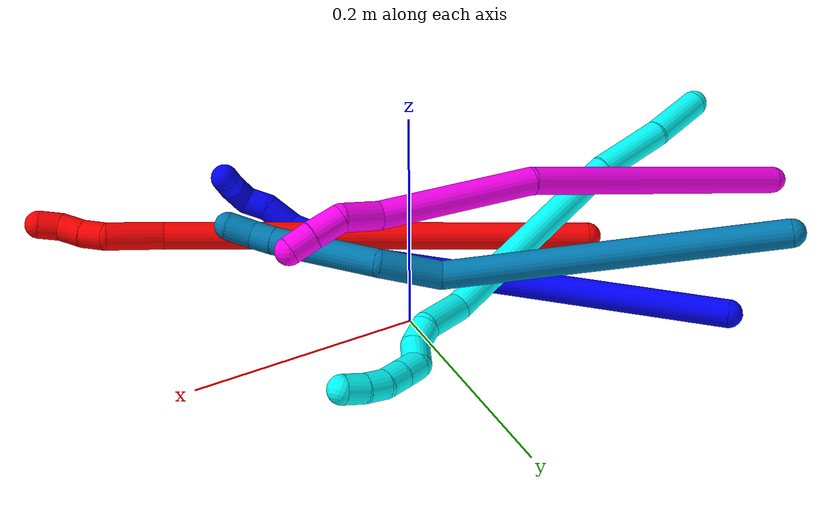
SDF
<sdf version="1.7">
 <world name="default">
  <model name="1">
   <static>0</static>
   <link name="1">
    <collision name="collision-cylinder-e_1_1_4">
     <pose>0.120253 -0.10048 0.048038 1.12484 0.823722 0.53739</pose>
     <geometry><cylinder><radius>0.0125</radius><length>0.327809</length></cylinder></geometry>
     <surface>
      <friction><ode><mu>1.16</mu><mu2>1.16</mu2><slip1>0</slip1><slip2>0</slip2></ode></friction>
      <contact><ode><kp>1e+06</kp><kd>1</kd><max_vel>0</max_vel><min_depth>0.001</min_depth></ode></contact>
     </surface>
    </collision>
    <visual name="visual-cylinder-e_1_1_4">
     <pose>0.120253 -0.10048 0.048038 1.12484 0.823722 0.53739</pose>
     <geometry><cylinder><radius>0.0125</radius><length>0.327809</length></cylinder></geometry>
     <material><ambient>0 0 1 1</ambient></material>
    </visual>
    <collision name="collision-cylinder-e_2_4_5">
     <pose>0.267136 -0.215096 0.098072 1.43043 1.07867 0.958882</pose>
     <geometry><cylinder><radius>0.0125</radius><length>0.06043</length></cylinder></geometry>
     <surface>
      <friction><ode><mu>1.16</mu><mu2>1.16</mu2><slip1>0</slip1><slip2>0</slip2></ode></friction>
      <contact><ode><kp>1e+06</kp><kd>1</kd><max_vel>0</max_vel><min_depth>0.001</min_depth></ode></contact>
     </surface>
    </collision>
    <visual name="visual-cylinder-e_2_4_5">
     <pose>0.267136 -0.215096 0.098072 1.43043 1.07867 0.958882</pose>
     <geometry><cylinder><radius>0.0125</radius><length>0.06043</length></cylinder></geometry>
     <material><ambient>0 0 1 1</ambient></material>
    </visual>
    <collision name="collision-cylinder-e_3_5_6">
     <pose>0.302849 -0.23362 0.101478 1.26021 1.1013 0.842002</pose>
     <geometry><cylinder><radius>0.0125</radius><length>0.020371</length></cylinder></geometry>
     <surface>
      <friction><ode><mu>1.16</mu><mu2>1.16</mu2><slip1>0</slip1><slip2>0</slip2></ode></friction>
      <contact><ode><kp>1e+06</kp><kd>1</kd><max_vel>0</max_vel><min_depth>0.001</min_depth></ode></contact>
     </surface>
    </collision>
    <visual name="visual-cylinder-e_3_5_6">
     <pose>0.302849 -0.23362 0.101478 1.26021 1.1013 0.842002</pose>
     <geometry><cylinder><radius>0.0125</radius><length>0.020371</length></cylinder></geometry>
     <material><ambient>0 0 1 1</ambient></material>
    </visual>
    <collision name="collision-cylinder-e_4_6_7">
     <pose>0.322295 -0.248198 0.098809 1.95145 0.756719 1.06196</pose>
     <geometry><cylinder><radius>0.0125</radius><length>0.030191</length></cylinder></geometry>
     <surface>
      <friction><ode><mu>1.16</mu><mu2>1.16</mu2><slip1>0</slip1><slip2>0</slip2></ode></friction>
      <contact><ode><kp>1e+06</kp><kd>1</kd><max_vel>0</max_vel><min_depth>0.001</min_depth></ode></contact>
     </surface>
    </collision>
    <visual name="visual-cylinder-e_4_6_7">
     <pose>0.322295 -0.248198 0.098809 1.95145 0.756719 1.06196</pose>
     <geometry><cylinder><radius>0.0125</radius><length>0.030191</length></cylinder></geometry>
     <material><ambient>0 0 1 1</ambient></material>
    </visual>
    <collision name="collision-cylinder-e_5_7_8">
     <pose>0.340111 -0.265531 0.095661 1.44131 0.802405 0.713251</pose>
     <geometry><cylinder><radius>0.0125</radius><length>0.020728</length></cylinder></geometry>
     <surface>
      <friction><ode><mu>1.16</mu><mu2>1.16</mu2><slip1>0</slip1><slip2>0</slip2></ode></friction>
      <contact><ode><kp>1e+06</kp><kd>1</kd><max_vel>0</max_vel><min_depth>0.001</min_depth></ode></contact>
     </surface>
    </collision>
    <visual name="visual-cylinder-e_5_7_8">
     <pose>0.340111 -0.265531 0.095661 1.44131 0.802405 0.713251</pose>
     <geometry><cylinder><radius>0.0125</radius><length>0.020728</length></cylinder></geometry>
     <material><ambient>0 0 1 1</ambient></material>
    </visual>
    <collision name="collision-cylinder-e_6_8_9">
     <pose>0.350241 -0.281111 0.091806 2.08663 0.269298 0.456973</pose>
     <geometry><cylinder><radius>0.0125</radius><length>0.020126</length></cylinder></geometry>
     <surface>
      <friction><ode><mu>1.16</mu><mu2>1.16</mu2><slip1>0</slip1><slip2>0</slip2></ode></friction>
      <contact><ode><kp>1e+06</kp><kd>1</kd><max_vel>0</max_vel><min_depth>0.001</min_depth></ode></contact>
     </surface>
    </collision>
    <visual name="visual-cylinder-e_6_8_9">
     <pose>0.350241 -0.281111 0.091806 2.08663 0.269298 0.456973</pose>
     <geometry><cylinder><radius>0.0125</radius><length>0.020126</length></cylinder></geometry>
     <material><ambient>0 0 1 1</ambient></material>
    </visual>
    <collision name="collision-cylinder-e_7_9_2">
     <pose>0.349602 -0.297366 0.081419 2.19273 -0.332081 -0.630855</pose>
     <geometry><cylinder><radius>0.0125</radius><length>0.020345</length></cylinder></geometry>
     <surface>
      <friction><ode><mu>1.16</mu><mu2>1.16</mu2><slip1>0</slip1><slip2>0</slip2></ode></friction>
      <contact><ode><kp>1e+06</kp><kd>1</kd><max_vel>0</max_vel><min_depth>0.001</min_depth></ode></contact>
     </surface>
    </collision>
    <visual name="visual-cylinder-e_7_9_2">
     <pose>0.349602 -0.297366 0.081419 2.19273 -0.332081 -0.630855</pose>
     <geometry><cylinder><radius>0.0125</radius><length>0.020345</length></cylinder></geometry>
     <material><ambient>0 0 1 1</ambient></material>
    </visual>
    <collision name="collision-sphere-2">
     <pose>0.346285 -0.305182 0.075816 0 -0 0</pose>
     <geometry><sphere><radius>0.0125</radius></sphere></geometry>
     <surface>
      <friction><ode><mu>1.16</mu><mu2>1.16</mu2><slip1>0</slip1><slip2>0</slip2></ode></friction>
      <contact><ode><kp>1e+06</kp><kd>1</kd><max_vel>0</max_vel><min_depth>0.001</min_depth></ode></contact>
     </surface>
    </collision>
    <visual name="visual-sphere-2">
     <pose>0.346285 -0.305182 0.075816 0 -0 0</pose>
     <geometry><sphere><radius>0.0125</radius></sphere></geometry>
     <material><ambient>0 0 1 1</ambient></material>
    </visual>
    <collision name="collision-sphere-9">
     <pose>0.352918 -0.28955 0.087021 0 -0 0</pose>
     <geometry><sphere><radius>0.0125</radius></sphere></geometry>
     <surface>
      <friction><ode><mu>1.16</mu><mu2>1.16</mu2><slip1>0</slip1><slip2>0</slip2></ode></friction>
      <contact><ode><kp>1e+06</kp><kd>1</kd><max_vel>0</max_vel><min_depth>0.001</min_depth></ode></contact>
     </surface>
    </collision>
    <visual name="visual-sphere-9">
     <pose>0.352918 -0.28955 0.087021 0 -0 0</pose>
     <geometry><sphere><radius>0.0125</radius></sphere></geometry>
     <material><ambient>0 0 1 1</ambient></material>
    </visual>
    <collision name="collision-sphere-4">
     <pose>0.240507 -0.20096 0.096075 0 -0 0</pose>
     <geometry><sphere><radius>0.0125</radius></sphere></geometry>
     <surface>
      <friction><ode><mu>1.16</mu><mu2>1.16</mu2><slip1>0</slip1><slip2>0</slip2></ode></friction>
      <contact><ode><kp>1e+06</kp><kd>1</kd><max_vel>0</max_vel><min_depth>0.001</min_depth></ode></contact>
     </surface>
    </collision>
    <visual name="visual-sphere-4">
     <pose>0.240507 -0.20096 0.096075 0 -0 0</pose>
     <geometry><sphere><radius>0.0125</radius></sphere></geometry>
     <material><ambient>0 0 1 1</ambient></material>
    </visual>
    <collision name="collision-sphere-1">
     <geometry><sphere><radius>0.0125</radius></sphere></geometry>
     <surface>
      <friction><ode><mu>1.16</mu><mu2>1.16</mu2><slip1>0</slip1><slip2>0</slip2></ode></friction>
      <contact><ode><kp>1e+06</kp><kd>1</kd><max_vel>0</max_vel><min_depth>0.001</min_depth></ode></contact>
     </surface>
    </collision>
    <visual name="visual-sphere-1">
     <geometry><sphere><radius>0.0125</radius></sphere></geometry>
     <material><ambient>0 0 1 1</ambient></material>
    </visual>
    <collision name="collision-sphere-8">
     <pose>0.347563 -0.272673 0.096591 0 -0 0</pose>
     <geometry><sphere><radius>0.0125</radius></sphere></geometry>
     <surface>
      <friction><ode><mu>1.16</mu><mu2>1.16</mu2><slip1>0</slip1><slip2>0</slip2></ode></friction>
      <contact><ode><kp>1e+06</kp><kd>1</kd><max_vel>0</max_vel><min_depth>0.001</min_depth></ode></contact>
     </surface>
    </collision>
    <visual name="visual-sphere-8">
     <pose>0.347563 -0.272673 0.096591 0 -0 0</pose>
     <geometry><sphere><radius>0.0125</radius></sphere></geometry>
     <material><ambient>0 0 1 1</ambient></material>
    </visual>
    <collision name="collision-sphere-5">
     <pose>0.293765 -0.229232 0.10007 0 -0 0</pose>
     <geometry><sphere><radius>0.0125</radius></sphere></geometry>
     <surface>
      <friction><ode><mu>1.16</mu><mu2>1.16</mu2><slip1>0</slip1><slip2>0</slip2></ode></friction>
      <contact><ode><kp>1e+06</kp><kd>1</kd><max_vel>0</max_vel><min_depth>0.001</min_depth></ode></contact>
     </surface>
    </collision>
    <visual name="visual-sphere-5">
     <pose>0.293765 -0.229232 0.10007 0 -0 0</pose>
     <geometry><sphere><radius>0.0125</radius></sphere></geometry>
     <material><ambient>0 0 1 1</ambient></material>
    </visual>
    <collision name="collision-sphere-6">
     <pose>0.311932 -0.238008 0.102887 0 -0 0</pose>
     <geometry><sphere><radius>0.0125</radius></sphere></geometry>
     <surface>
      <friction><ode><mu>1.16</mu><mu2>1.16</mu2><slip1>0</slip1><slip2>0</slip2></ode></friction>
      <contact><ode><kp>1e+06</kp><kd>1</kd><max_vel>0</max_vel><min_depth>0.001</min_depth></ode></contact>
     </surface>
    </collision>
    <visual name="visual-sphere-6">
     <pose>0.311932 -0.238008 0.102887 0 -0 0</pose>
     <geometry><sphere><radius>0.0125</radius></sphere></geometry>
     <material><ambient>0 0 1 1</ambient></material>
    </visual>
    <collision name="collision-sphere-7">
     <pose>0.332659 -0.258388 0.094731 0 -0 0</pose>
     <geometry><sphere><radius>0.0125</radius></sphere></geometry>
     <surface>
      <friction><ode><mu>1.16</mu><mu2>1.16</mu2><slip1>0</slip1><slip2>0</slip2></ode></friction>
      <contact><ode><kp>1e+06</kp><kd>1</kd><max_vel>0</max_vel><min_depth>0.001</min_depth></ode></contact>
     </surface>
    </collision>
    <visual name="visual-sphere-7">
     <pose>0.332659 -0.258388 0.094731 0 -0 0</pose>
     <geometry><sphere><radius>0.0125</radius></sphere></geometry>
     <material><ambient>0 0 1 1</ambient></material>
    </visual>
    <inertial>
     <pose>0.185349 -0.150801 0.064422 0 -0 0</pose>
     <mass>0.5</mass>
     <inertia>
      <ixx>0.002795</ixx>
      <ixy>0</ixy>
      <ixz>0</ixz>
      <iyy>0.003123</iyy>
      <iyz>0</iyz>
      <izz>-0.000357</izz>
     </inertia>
    </inertial>
   </link>
   <pose>-0.241599 0.135496 0.011491 -2.71882 -0.021404 -1.49361</pose>
  </model>
  <model name="2">
   <static>0</static>
   <link name="2">
    <collision name="collision-cylinder-e_1_1_4">
     <pose>0.089786 -0.119314 0.121055 0.778157 0.485986 0.202565</pose>
     <geometry><cylinder><radius>0.0125</radius><length>0.384456</length></cylinder></geometry>
     <surface>
      <friction><ode><mu>1.16</mu><mu2>1.16</mu2><slip1>0</slip1><slip2>0</slip2></ode></friction>
      <contact><ode><kp>1e+06</kp><kd>1</kd><max_vel>0</max_vel><min_depth>0.001</min_depth></ode></contact>
     </surface>
    </collision>
    <visual name="visual-cylinder-e_1_1_4">
     <pose>0.089786 -0.119314 0.121055 0.778157 0.485986 0.202565</pose>
     <geometry><cylinder><radius>0.0125</radius><length>0.384456</length></cylinder></geometry>
     <material><ambient>1 0 0 1</ambient></material>
    </visual>
    <collision name="collision-cylinder-e_2_4_5">
     <pose>0.19191 -0.257781 0.254403 1.00017 0.496768 0.275409</pose>
     <geometry><cylinder><radius>0.0125</radius><length>0.051776</length></cylinder></geometry>
     <surface>
      <friction><ode><mu>1.16</mu><mu2>1.16</mu2><slip1>0</slip1><slip2>0</slip2></ode></friction>
      <contact><ode><kp>1e+06</kp><kd>1</kd><max_vel>0</max_vel><min_depth>0.001</min_depth></ode></contact>
     </surface>
    </collision>
    <visual name="visual-cylinder-e_2_4_5">
     <pose>0.19191 -0.257781 0.254403 1.00017 0.496768 0.275409</pose>
     <geometry><cylinder><radius>0.0125</radius><length>0.051776</length></cylinder></geometry>
     <material><ambient>1 0 0 1</ambient></material>
    </visual>
    <collision name="collision-cylinder-e_3_5_6">
     <pose>0.209532 -0.280881 0.275158 0.436424 0.515035 0.116666</pose>
     <geometry><cylinder><radius>0.0125</radius><length>0.021458</length></cylinder></geometry>
     <surface>
      <friction><ode><mu>1.16</mu><mu2>1.16</mu2><slip1>0</slip1><slip2>0</slip2></ode></friction>
      <contact><ode><kp>1e+06</kp><kd>1</kd><max_vel>0</max_vel><min_depth>0.001</min_depth></ode></contact>
     </surface>
    </collision>
    <visual name="visual-cylinder-e_3_5_6">
     <pose>0.209532 -0.280881 0.275158 0.436424 0.515035 0.116666</pose>
     <geometry><cylinder><radius>0.0125</radius><length>0.021458</length></cylinder></geometry>
     <material><ambient>1 0 0 1</ambient></material>
    </visual>
    <collision name="collision-cylinder-e_4_6_7">
     <pose>0.221724 -0.287685 0.29182 0.335328 0.671884 0.118061</pose>
     <geometry><cylinder><radius>0.0125</radius><length>0.022191</length></cylinder></geometry>
     <surface>
      <friction><ode><mu>1.16</mu><mu2>1.16</mu2><slip1>0</slip1><slip2>0</slip2></ode></friction>
      <contact><ode><kp>1e+06</kp><kd>1</kd><max_vel>0</max_vel><min_depth>0.001</min_depth></ode></contact>
     </surface>
    </collision>
    <visual name="visual-cylinder-e_4_6_7">
     <pose>0.221724 -0.287685 0.29182 0.335328 0.671884 0.118061</pose>
     <geometry><cylinder><radius>0.0125</radius><length>0.022191</length></cylinder></geometry>
     <material><ambient>1 0 0 1</ambient></material>
    </visual>
    <collision name="collision-cylinder-e_5_7_2">
     <pose>0.234267 -0.296687 0.305648 0.829284 0.59486 0.268219</pose>
     <geometry><cylinder><radius>0.0125</radius><length>0.020119</length></cylinder></geometry>
     <surface>
      <friction><ode><mu>1.16</mu><mu2>1.16</mu2><slip1>0</slip1><slip2>0</slip2></ode></friction>
      <contact><ode><kp>1e+06</kp><kd>1</kd><max_vel>0</max_vel><min_depth>0.001</min_depth></ode></contact>
     </surface>
    </collision>
    <visual name="visual-cylinder-e_5_7_2">
     <pose>0.234267 -0.296687 0.305648 0.829284 0.59486 0.268219</pose>
     <geometry><cylinder><radius>0.0125</radius><length>0.020119</length></cylinder></geometry>
     <material><ambient>1 0 0 1</ambient></material>
    </visual>
    <collision name="collision-sphere-2">
     <pose>0.239905 -0.302831 0.311275 0 -0 0</pose>
     <geometry><sphere><radius>0.0125</radius></sphere></geometry>
     <surface>
      <friction><ode><mu>1.16</mu><mu2>1.16</mu2><slip1>0</slip1><slip2>0</slip2></ode></friction>
      <contact><ode><kp>1e+06</kp><kd>1</kd><max_vel>0</max_vel><min_depth>0.001</min_depth></ode></contact>
     </surface>
    </collision>
    <visual name="visual-sphere-2">
     <pose>0.239905 -0.302831 0.311275 0 -0 0</pose>
     <geometry><sphere><radius>0.0125</radius></sphere></geometry>
     <material><ambient>1 0 0 1</ambient></material>
    </visual>
    <collision name="collision-sphere-7">
     <pose>0.22863 -0.290543 0.30002 0 -0 0</pose>
     <geometry><sphere><radius>0.0125</radius></sphere></geometry>
     <surface>
      <friction><ode><mu>1.16</mu><mu2>1.16</mu2><slip1>0</slip1><slip2>0</slip2></ode></friction>
      <contact><ode><kp>1e+06</kp><kd>1</kd><max_vel>0</max_vel><min_depth>0.001</min_depth></ode></contact>
     </surface>
    </collision>
    <visual name="visual-sphere-7">
     <pose>0.22863 -0.290543 0.30002 0 -0 0</pose>
     <geometry><sphere><radius>0.0125</radius></sphere></geometry>
     <material><ambient>1 0 0 1</ambient></material>
    </visual>
    <collision name="collision-sphere-6">
     <pose>0.214817 -0.284828 0.28362 0 -0 0</pose>
     <geometry><sphere><radius>0.0125</radius></sphere></geometry>
     <surface>
      <friction><ode><mu>1.16</mu><mu2>1.16</mu2><slip1>0</slip1><slip2>0</slip2></ode></friction>
      <contact><ode><kp>1e+06</kp><kd>1</kd><max_vel>0</max_vel><min_depth>0.001</min_depth></ode></contact>
     </surface>
    </collision>
    <visual name="visual-sphere-6">
     <pose>0.214817 -0.284828 0.28362 0 -0 0</pose>
     <geometry><sphere><radius>0.0125</radius></sphere></geometry>
     <material><ambient>1 0 0 1</ambient></material>
    </visual>
    <collision name="collision-sphere-5">
     <pose>0.204248 -0.276934 0.266696 0 -0 0</pose>
     <geometry><sphere><radius>0.0125</radius></sphere></geometry>
     <surface>
      <friction><ode><mu>1.16</mu><mu2>1.16</mu2><slip1>0</slip1><slip2>0</slip2></ode></friction>
      <contact><ode><kp>1e+06</kp><kd>1</kd><max_vel>0</max_vel><min_depth>0.001</min_depth></ode></contact>
     </surface>
    </collision>
    <visual name="visual-sphere-5">
     <pose>0.204248 -0.276934 0.266696 0 -0 0</pose>
     <geometry><sphere><radius>0.0125</radius></sphere></geometry>
     <material><ambient>1 0 0 1</ambient></material>
    </visual>
    <collision name="collision-sphere-1">
     <geometry><sphere><radius>0.0125</radius></sphere></geometry>
     <surface>
      <friction><ode><mu>1.16</mu><mu2>1.16</mu2><slip1>0</slip1><slip2>0</slip2></ode></friction>
      <contact><ode><kp>1e+06</kp><kd>1</kd><max_vel>0</max_vel><min_depth>0.001</min_depth></ode></contact>
     </surface>
    </collision>
    <visual name="visual-sphere-1">
     <geometry><sphere><radius>0.0125</radius></sphere></geometry>
     <material><ambient>1 0 0 1</ambient></material>
    </visual>
    <collision name="collision-sphere-4">
     <pose>0.179572 -0.238628 0.24211 0 -0 0</pose>
     <geometry><sphere><radius>0.0125</radius></sphere></geometry>
     <surface>
      <friction><ode><mu>1.16</mu><mu2>1.16</mu2><slip1>0</slip1><slip2>0</slip2></ode></friction>
      <contact><ode><kp>1e+06</kp><kd>1</kd><max_vel>0</max_vel><min_depth>0.001</min_depth></ode></contact>
     </surface>
    </collision>
    <visual name="visual-sphere-4">
     <pose>0.179572 -0.238628 0.24211 0 -0 0</pose>
     <geometry><sphere><radius>0.0125</radius></sphere></geometry>
     <material><ambient>1 0 0 1</ambient></material>
    </visual>
    <inertial>
     <pose>0.117169 -0.155196 0.156483 0 -0 0</pose>
     <mass>0.5</mass>
     <inertia>
      <ixx>0.004998</ixx>
      <ixy>0</ixy>
      <ixz>0</ixz>
      <iyy>0.004466</iyy>
      <iyz>0</iyz>
      <izz>0.000757</izz>
     </inertia>
    </inertial>
   </link>
   <pose>-0.185408 -0.00216 0.02988 3.11191 -0.988294 -1.09192</pose>
  </model>
  <model name="3">
   <static>0</static>
   <link name="3">
    <collision name="collision-cylinder-e_1_1_4">
     <pose>0.016263 0.000525 0.026002 -0.020193 0.558822 -0.005794</pose>
     <geometry><cylinder><radius>0.0125</radius><length>0.061348</length></cylinder></geometry>
     <surface>
      <friction><ode><mu>1.16</mu><mu2>1.16</mu2><slip1>0</slip1><slip2>0</slip2></ode></friction>
      <contact><ode><kp>1e+06</kp><kd>1</kd><max_vel>0</max_vel><min_depth>0.001</min_depth></ode></contact>
     </surface>
    </collision>
    <visual name="visual-cylinder-e_1_1_4">
     <pose>0.016263 0.000525 0.026002 -0.020193 0.558822 -0.005794</pose>
     <geometry><cylinder><radius>0.0125</radius><length>0.061348</length></cylinder></geometry>
     <material><ambient>0.003922 1 0.996078 1</ambient></material>
    </visual>
    <collision name="collision-cylinder-e_2_4_5">
     <pose>0.051575 0.007855 0.080685 -0.232957 0.573728 -0.069007</pose>
     <geometry><cylinder><radius>0.0125</radius><length>0.070193</length></cylinder></geometry>
     <surface>
      <friction><ode><mu>1.16</mu><mu2>1.16</mu2><slip1>0</slip1><slip2>0</slip2></ode></friction>
      <contact><ode><kp>1e+06</kp><kd>1</kd><max_vel>0</max_vel><min_depth>0.001</min_depth></ode></contact>
     </surface>
    </collision>
    <visual name="visual-cylinder-e_2_4_5">
     <pose>0.051575 0.007855 0.080685 -0.232957 0.573728 -0.069007</pose>
     <geometry><cylinder><radius>0.0125</radius><length>0.070193</length></cylinder></geometry>
     <material><ambient>0.003922 1 0.996078 1</ambient></material>
    </visual>
    <collision name="collision-cylinder-e_3_5_6">
     <pose>0.110547 0.030333 0.198099 -0.174826 0.417075 -0.037086</pose>
     <geometry><cylinder><radius>0.0125</radius><length>0.19711</length></cylinder></geometry>
     <surface>
      <friction><ode><mu>1.16</mu><mu2>1.16</mu2><slip1>0</slip1><slip2>0</slip2></ode></friction>
      <contact><ode><kp>1e+06</kp><kd>1</kd><max_vel>0</max_vel><min_depth>0.001</min_depth></ode></contact>
     </surface>
    </collision>
    <visual name="visual-cylinder-e_3_5_6">
     <pose>0.110547 0.030333 0.198099 -0.174826 0.417075 -0.037086</pose>
     <geometry><cylinder><radius>0.0125</radius><length>0.19711</length></cylinder></geometry>
     <material><ambient>0.003922 1 0.996078 1</ambient></material>
    </visual>
    <collision name="collision-cylinder-e_4_6_7">
     <pose>0.16507 0.042763 0.303069 0.197136 0.722635 0.074707</pose>
     <geometry><cylinder><radius>0.0125</radius><length>0.044149</length></cylinder></geometry>
     <surface>
      <friction><ode><mu>1.16</mu><mu2>1.16</mu2><slip1>0</slip1><slip2>0</slip2></ode></friction>
      <contact><ode><kp>1e+06</kp><kd>1</kd><max_vel>0</max_vel><min_depth>0.001</min_depth></ode></contact>
     </surface>
    </collision>
    <visual name="visual-cylinder-e_4_6_7">
     <pose>0.16507 0.042763 0.303069 0.197136 0.722635 0.074707</pose>
     <geometry><cylinder><radius>0.0125</radius><length>0.044149</length></cylinder></geometry>
     <material><ambient>0.003922 1 0.996078 1</ambient></material>
    </visual>
    <collision name="collision-cylinder-e_5_7_8">
     <pose>0.182467 0.038363 0.329757 0.110209 0.260022 0.014424</pose>
     <geometry><cylinder><radius>0.0125</radius><length>0.021762</length></cylinder></geometry>
     <surface>
      <friction><ode><mu>1.16</mu><mu2>1.16</mu2><slip1>0</slip1><slip2>0</slip2></ode></friction>
      <contact><ode><kp>1e+06</kp><kd>1</kd><max_vel>0</max_vel><min_depth>0.001</min_depth></ode></contact>
     </surface>
    </collision>
    <visual name="visual-cylinder-e_5_7_8">
     <pose>0.182467 0.038363 0.329757 0.110209 0.260022 0.014424</pose>
     <geometry><cylinder><radius>0.0125</radius><length>0.021762</length></cylinder></geometry>
     <material><ambient>0.003922 1 0.996078 1</ambient></material>
    </visual>
    <collision name="collision-cylinder-e_6_8_9">
     <pose>0.186066 0.029621 0.349742 0.672115 0.065709 0.02296</pose>
     <geometry><cylinder><radius>0.0125</radius><length>0.024419</length></cylinder></geometry>
     <surface>
      <friction><ode><mu>1.16</mu><mu2>1.16</mu2><slip1>0</slip1><slip2>0</slip2></ode></friction>
      <contact><ode><kp>1e+06</kp><kd>1</kd><max_vel>0</max_vel><min_depth>0.001</min_depth></ode></contact>
     </surface>
    </collision>
    <visual name="visual-cylinder-e_6_8_9">
     <pose>0.186066 0.029621 0.349742 0.672115 0.065709 0.02296</pose>
     <geometry><cylinder><radius>0.0125</radius><length>0.024419</length></cylinder></geometry>
     <material><ambient>0.003922 1 0.996078 1</ambient></material>
    </visual>
    <collision name="collision-cylinder-e_7_9_10">
     <pose>0.193883 0.020357 0.366862 0.217707 0.734336 0.084015</pose>
     <geometry><cylinder><radius>0.0125</radius><length>0.020937</length></cylinder></geometry>
     <surface>
      <friction><ode><mu>1.16</mu><mu2>1.16</mu2><slip1>0</slip1><slip2>0</slip2></ode></friction>
      <contact><ode><kp>1e+06</kp><kd>1</kd><max_vel>0</max_vel><min_depth>0.001</min_depth></ode></contact>
     </surface>
    </collision>
    <visual name="visual-cylinder-e_7_9_10">
     <pose>0.193883 0.020357 0.366862 0.217707 0.734336 0.084015</pose>
     <geometry><cylinder><radius>0.0125</radius><length>0.020937</length></cylinder></geometry>
     <material><ambient>0.003922 1 0.996078 1</ambient></material>
    </visual>
    <collision name="collision-cylinder-e_8_10_11">
     <pose>0.20769 0.017148 0.38166 0.209192 0.744554 0.08194</pose>
     <geometry><cylinder><radius>0.0125</radius><length>0.020046</length></cylinder></geometry>
     <surface>
      <friction><ode><mu>1.16</mu><mu2>1.16</mu2><slip1>0</slip1><slip2>0</slip2></ode></friction>
      <contact><ode><kp>1e+06</kp><kd>1</kd><max_vel>0</max_vel><min_depth>0.001</min_depth></ode></contact>
     </surface>
    </collision>
    <visual name="visual-cylinder-e_8_10_11">
     <pose>0.20769 0.017148 0.38166 0.209192 0.744554 0.08194</pose>
     <geometry><cylinder><radius>0.0125</radius><length>0.020046</length></cylinder></geometry>
     <material><ambient>0.003922 1 0.996078 1</ambient></material>
    </visual>
    <collision name="collision-cylinder-e_9_11_12">
     <pose>0.222792 0.015783 0.394451 -0.029711 0.979212 -0.015834</pose>
     <geometry><cylinder><radius>0.0125</radius><length>0.020024</length></cylinder></geometry>
     <surface>
      <friction><ode><mu>1.16</mu><mu2>1.16</mu2><slip1>0</slip1><slip2>0</slip2></ode></friction>
      <contact><ode><kp>1e+06</kp><kd>1</kd><max_vel>0</max_vel><min_depth>0.001</min_depth></ode></contact>
     </surface>
    </collision>
    <visual name="visual-cylinder-e_9_11_12">
     <pose>0.222792 0.015783 0.394451 -0.029711 0.979212 -0.015834</pose>
     <geometry><cylinder><radius>0.0125</radius><length>0.020024</length></cylinder></geometry>
     <material><ambient>0.003922 1 0.996078 1</ambient></material>
    </visual>
    <collision name="collision-cylinder-e_10_12_2">
     <pose>0.240052 0.017003 0.404382 -0.237856 1.107 -0.147409</pose>
     <geometry><cylinder><radius>0.0125</radius><length>0.020013</length></cylinder></geometry>
     <surface>
      <friction><ode><mu>1.16</mu><mu2>1.16</mu2><slip1>0</slip1><slip2>0</slip2></ode></friction>
      <contact><ode><kp>1e+06</kp><kd>1</kd><max_vel>0</max_vel><min_depth>0.001</min_depth></ode></contact>
     </surface>
    </collision>
    <visual name="visual-cylinder-e_10_12_2">
     <pose>0.240052 0.017003 0.404382 -0.237856 1.107 -0.147409</pose>
     <geometry><cylinder><radius>0.0125</radius><length>0.020013</length></cylinder></geometry>
     <material><ambient>0.003922 1 0.996078 1</ambient></material>
    </visual>
    <collision name="collision-sphere-2">
     <pose>0.249001 0.018058 0.408732 0 -0 0</pose>
     <geometry><sphere><radius>0.0125</radius></sphere></geometry>
     <surface>
      <friction><ode><mu>1.16</mu><mu2>1.16</mu2><slip1>0</slip1><slip2>0</slip2></ode></friction>
      <contact><ode><kp>1e+06</kp><kd>1</kd><max_vel>0</max_vel><min_depth>0.001</min_depth></ode></contact>
     </surface>
    </collision>
    <visual name="visual-sphere-2">
     <pose>0.249001 0.018058 0.408732 0 -0 0</pose>
     <geometry><sphere><radius>0.0125</radius></sphere></geometry>
     <material><ambient>0.003922 1 0.996078 1</ambient></material>
    </visual>
    <collision name="collision-sphere-12">
     <pose>0.231103 0.015949 0.400032 0 -0 0</pose>
     <geometry><sphere><radius>0.0125</radius></sphere></geometry>
     <surface>
      <friction><ode><mu>1.16</mu><mu2>1.16</mu2><slip1>0</slip1><slip2>0</slip2></ode></friction>
      <contact><ode><kp>1e+06</kp><kd>1</kd><max_vel>0</max_vel><min_depth>0.001</min_depth></ode></contact>
     </surface>
    </collision>
    <visual name="visual-sphere-12">
     <pose>0.231103 0.015949 0.400032 0 -0 0</pose>
     <geometry><sphere><radius>0.0125</radius></sphere></geometry>
     <material><ambient>0.003922 1 0.996078 1</ambient></material>
    </visual>
    <collision name="collision-sphere-11">
     <pose>0.214482 0.015617 0.38887 0 -0 0</pose>
     <geometry><sphere><radius>0.0125</radius></sphere></geometry>
     <surface>
      <friction><ode><mu>1.16</mu><mu2>1.16</mu2><slip1>0</slip1><slip2>0</slip2></ode></friction>
      <contact><ode><kp>1e+06</kp><kd>1</kd><max_vel>0</max_vel><min_depth>0.001</min_depth></ode></contact>
     </surface>
    </collision>
    <visual name="visual-sphere-11">
     <pose>0.214482 0.015617 0.38887 0 -0 0</pose>
     <geometry><sphere><radius>0.0125</radius></sphere></geometry>
     <material><ambient>0.003922 1 0.996078 1</ambient></material>
    </visual>
    <collision name="collision-sphere-10">
     <pose>0.200898 0.018678 0.37445 0 -0 0</pose>
     <geometry><sphere><radius>0.0125</radius></sphere></geometry>
     <surface>
      <friction><ode><mu>1.16</mu><mu2>1.16</mu2><slip1>0</slip1><slip2>0</slip2></ode></friction>
      <contact><ode><kp>1e+06</kp><kd>1</kd><max_vel>0</max_vel><min_depth>0.001</min_depth></ode></contact>
     </surface>
    </collision>
    <visual name="visual-sphere-10">
     <pose>0.200898 0.018678 0.37445 0 -0 0</pose>
     <geometry><sphere><radius>0.0125</radius></sphere></geometry>
     <material><ambient>0.003922 1 0.996078 1</ambient></material>
    </visual>
    <collision name="collision-sphere-9">
     <pose>0.186868 0.022035 0.359275 0 -0 0</pose>
     <geometry><sphere><radius>0.0125</radius></sphere></geometry>
     <surface>
      <friction><ode><mu>1.16</mu><mu2>1.16</mu2><slip1>0</slip1><slip2>0</slip2></ode></friction>
      <contact><ode><kp>1e+06</kp><kd>1</kd><max_vel>0</max_vel><min_depth>0.001</min_depth></ode></contact>
     </surface>
    </collision>
    <visual name="visual-sphere-9">
     <pose>0.186868 0.022035 0.359275 0 -0 0</pose>
     <geometry><sphere><radius>0.0125</radius></sphere></geometry>
     <material><ambient>0.003922 1 0.996078 1</ambient></material>
    </visual>
    <collision name="collision-sphere-4">
     <pose>0.032526 0.00105 0.052005 0 -0 0</pose>
     <geometry><sphere><radius>0.0125</radius></sphere></geometry>
     <surface>
      <friction><ode><mu>1.16</mu><mu2>1.16</mu2><slip1>0</slip1><slip2>0</slip2></ode></friction>
      <contact><ode><kp>1e+06</kp><kd>1</kd><max_vel>0</max_vel><min_depth>0.001</min_depth></ode></contact>
     </surface>
    </collision>
    <visual name="visual-sphere-4">
     <pose>0.032526 0.00105 0.052005 0 -0 0</pose>
     <geometry><sphere><radius>0.0125</radius></sphere></geometry>
     <material><ambient>0.003922 1 0.996078 1</ambient></material>
    </visual>
    <collision name="collision-sphere-1">
     <geometry><sphere><radius>0.0125</radius></sphere></geometry>
     <surface>
      <friction><ode><mu>1.16</mu><mu2>1.16</mu2><slip1>0</slip1><slip2>0</slip2></ode></friction>
      <contact><ode><kp>1e+06</kp><kd>1</kd><max_vel>0</max_vel><min_depth>0.001</min_depth></ode></contact>
     </surface>
    </collision>
    <visual name="visual-sphere-1">
     <geometry><sphere><radius>0.0125</radius></sphere></geometry>
     <material><ambient>0.003922 1 0.996078 1</ambient></material>
    </visual>
    <collision name="collision-sphere-8">
     <pose>0.185264 0.037207 0.340208 0 -0 0</pose>
     <geometry><sphere><radius>0.0125</radius></sphere></geometry>
     <surface>
      <friction><ode><mu>1.16</mu><mu2>1.16</mu2><slip1>0</slip1><slip2>0</slip2></ode></friction>
      <contact><ode><kp>1e+06</kp><kd>1</kd><max_vel>0</max_vel><min_depth>0.001</min_depth></ode></contact>
     </surface>
    </collision>
    <visual name="visual-sphere-8">
     <pose>0.185264 0.037207 0.340208 0 -0 0</pose>
     <geometry><sphere><radius>0.0125</radius></sphere></geometry>
     <material><ambient>0.003922 1 0.996078 1</ambient></material>
    </visual>
    <collision name="collision-sphere-5">
     <pose>0.070624 0.01466 0.109366 0 -0 0</pose>
     <geometry><sphere><radius>0.0125</radius></sphere></geometry>
     <surface>
      <friction><ode><mu>1.16</mu><mu2>1.16</mu2><slip1>0</slip1><slip2>0</slip2></ode></friction>
      <contact><ode><kp>1e+06</kp><kd>1</kd><max_vel>0</max_vel><min_depth>0.001</min_depth></ode></contact>
     </surface>
    </collision>
    <visual name="visual-sphere-5">
     <pose>0.070624 0.01466 0.109366 0 -0 0</pose>
     <geometry><sphere><radius>0.0125</radius></sphere></geometry>
     <material><ambient>0.003922 1 0.996078 1</ambient></material>
    </visual>
    <collision name="collision-sphere-6">
     <pose>0.150471 0.046006 0.286832 0 -0 0</pose>
     <geometry><sphere><radius>0.0125</radius></sphere></geometry>
     <surface>
      <friction><ode><mu>1.16</mu><mu2>1.16</mu2><slip1>0</slip1><slip2>0</slip2></ode></friction>
      <contact><ode><kp>1e+06</kp><kd>1</kd><max_vel>0</max_vel><min_depth>0.001</min_depth></ode></contact>
     </surface>
    </collision>
    <visual name="visual-sphere-6">
     <pose>0.150471 0.046006 0.286832 0 -0 0</pose>
     <geometry><sphere><radius>0.0125</radius></sphere></geometry>
     <material><ambient>0.003922 1 0.996078 1</ambient></material>
    </visual>
    <collision name="collision-sphere-7">
     <pose>0.179669 0.03952 0.319305 0 -0 0</pose>
     <geometry><sphere><radius>0.0125</radius></sphere></geometry>
     <surface>
      <friction><ode><mu>1.16</mu><mu2>1.16</mu2><slip1>0</slip1><slip2>0</slip2></ode></friction>
      <contact><ode><kp>1e+06</kp><kd>1</kd><max_vel>0</max_vel><min_depth>0.001</min_depth></ode></contact>
     </surface>
    </collision>
    <visual name="visual-sphere-7">
     <pose>0.179669 0.03952 0.319305 0 -0 0</pose>
     <geometry><sphere><radius>0.0125</radius></sphere></geometry>
     <material><ambient>0.003922 1 0.996078 1</ambient></material>
    </visual>
    <inertial>
     <pose>0.119396 0.02287 0.213452 0 -0 0</pose>
     <mass>0.5</mass>
     <inertia>
      <ixx>0.000645</ixx>
      <ixy>0</ixy>
      <ixz>0</ixz>
      <iyy>0.000686</iyy>
      <iyz>0</iyz>
      <izz>-0.000375</izz>
     </inertia>
    </inertial>
   </link>
   <pose>-0.342694 -0.061114 0.099131 -2.38697 -0.714586 -0.28028</pose>
  </model>
  <model name="9">
   <static>0</static>
   <link name="9">
    <collision name="collision-cylinder-e_1_1_4">
     <pose>0.102546 -0.041576 -0.099816 2.74692 0.758905 2.21209</pose>
     <geometry><cylinder><radius>0.0125</radius><length>0.298043</length></cylinder></geometry>
     <surface>
      <friction><ode><mu>1.16</mu><mu2>1.16</mu2><slip1>0</slip1><slip2>0</slip2></ode></friction>
      <contact><ode><kp>1e+06</kp><kd>1</kd><max_vel>0</max_vel><min_depth>0.001</min_depth></ode></contact>
     </surface>
    </collision>
    <visual name="visual-cylinder-e_1_1_4">
     <pose>0.102546 -0.041576 -0.099816 2.74692 0.758905 2.21209</pose>
     <geometry><cylinder><radius>0.0125</radius><length>0.298043</length></cylinder></geometry>
     <material><ambient>0 0.490196 0.709804 1</ambient></material>
    </visual>
    <collision name="collision-cylinder-e_2_4_5">
     <pose>0.217836 -0.101661 -0.216977 2.32379 0.465598 1.00132</pose>
     <geometry><cylinder><radius>0.0125</radius><length>0.056775</length></cylinder></geometry>
     <surface>
      <friction><ode><mu>1.16</mu><mu2>1.16</mu2><slip1>0</slip1><slip2>0</slip2></ode></friction>
      <contact><ode><kp>1e+06</kp><kd>1</kd><max_vel>0</max_vel><min_depth>0.001</min_depth></ode></contact>
     </surface>
    </collision>
    <visual name="visual-cylinder-e_2_4_5">
     <pose>0.217836 -0.101661 -0.216977 2.32379 0.465598 1.00132</pose>
     <geometry><cylinder><radius>0.0125</radius><length>0.056775</length></cylinder></geometry>
     <material><ambient>0 0.490196 0.709804 1</ambient></material>
    </visual>
    <collision name="collision-cylinder-e_3_5_6">
     <pose>0.249992 -0.130158 -0.278971 2.92149 0.401248 2.14612</pose>
     <geometry><cylinder><radius>0.0125</radius><length>0.099399</length></cylinder></geometry>
     <surface>
      <friction><ode><mu>1.16</mu><mu2>1.16</mu2><slip1>0</slip1><slip2>0</slip2></ode></friction>
      <contact><ode><kp>1e+06</kp><kd>1</kd><max_vel>0</max_vel><min_depth>0.001</min_depth></ode></contact>
     </surface>
    </collision>
    <visual name="visual-cylinder-e_3_5_6">
     <pose>0.249992 -0.130158 -0.278971 2.92149 0.401248 2.14612</pose>
     <geometry><cylinder><radius>0.0125</radius><length>0.099399</length></cylinder></geometry>
     <material><ambient>0 0.490196 0.709804 1</ambient></material>
    </visual>
    <collision name="collision-cylinder-e_4_6_7">
     <pose>0.272702 -0.14232 -0.333223 2.91902 0.323257 1.93995</pose>
     <geometry><cylinder><radius>0.0125</radius><length>0.020769</length></cylinder></geometry>
     <surface>
      <friction><ode><mu>1.16</mu><mu2>1.16</mu2><slip1>0</slip1><slip2>0</slip2></ode></friction>
      <contact><ode><kp>1e+06</kp><kd>1</kd><max_vel>0</max_vel><min_depth>0.001</min_depth></ode></contact>
     </surface>
    </collision>
    <visual name="visual-cylinder-e_4_6_7">
     <pose>0.272702 -0.14232 -0.333223 2.91902 0.323257 1.93995</pose>
     <geometry><cylinder><radius>0.0125</radius><length>0.020769</length></cylinder></geometry>
     <material><ambient>0 0.490196 0.709804 1</ambient></material>
    </visual>
    <collision name="collision-cylinder-e_5_7_2">
     <pose>0.279916 -0.150048 -0.353327 2.65502 0.318441 1.14848</pose>
     <geometry><cylinder><radius>0.0125</radius><length>0.025014</length></cylinder></geometry>
     <surface>
      <friction><ode><mu>1.16</mu><mu2>1.16</mu2><slip1>0</slip1><slip2>0</slip2></ode></friction>
      <contact><ode><kp>1e+06</kp><kd>1</kd><max_vel>0</max_vel><min_depth>0.001</min_depth></ode></contact>
     </surface>
    </collision>
    <visual name="visual-cylinder-e_5_7_2">
     <pose>0.279916 -0.150048 -0.353327 2.65502 0.318441 1.14848</pose>
     <geometry><cylinder><radius>0.0125</radius><length>0.025014</length></cylinder></geometry>
     <material><ambient>0 0.490196 0.709804 1</ambient></material>
    </visual>
    <collision name="collision-sphere-2">
     <pose>0.283832 -0.155602 -0.363826 0 -0 0</pose>
     <geometry><sphere><radius>0.0125</radius></sphere></geometry>
     <surface>
      <friction><ode><mu>1.16</mu><mu2>1.16</mu2><slip1>0</slip1><slip2>0</slip2></ode></friction>
      <contact><ode><kp>1e+06</kp><kd>1</kd><max_vel>0</max_vel><min_depth>0.001</min_depth></ode></contact>
     </surface>
    </collision>
    <visual name="visual-sphere-2">
     <pose>0.283832 -0.155602 -0.363826 0 -0 0</pose>
     <geometry><sphere><radius>0.0125</radius></sphere></geometry>
     <material><ambient>0 0.490196 0.709804 1</ambient></material>
    </visual>
    <collision name="collision-sphere-7">
     <pose>0.276001 -0.144494 -0.342827 0 -0 0</pose>
     <geometry><sphere><radius>0.0125</radius></sphere></geometry>
     <surface>
      <friction><ode><mu>1.16</mu><mu2>1.16</mu2><slip1>0</slip1><slip2>0</slip2></ode></friction>
      <contact><ode><kp>1e+06</kp><kd>1</kd><max_vel>0</max_vel><min_depth>0.001</min_depth></ode></contact>
     </surface>
    </collision>
    <visual name="visual-sphere-7">
     <pose>0.276001 -0.144494 -0.342827 0 -0 0</pose>
     <geometry><sphere><radius>0.0125</radius></sphere></geometry>
     <material><ambient>0 0.490196 0.709804 1</ambient></material>
    </visual>
    <collision name="collision-sphere-6">
     <pose>0.269403 -0.140147 -0.323619 0 -0 0</pose>
     <geometry><sphere><radius>0.0125</radius></sphere></geometry>
     <surface>
      <friction><ode><mu>1.16</mu><mu2>1.16</mu2><slip1>0</slip1><slip2>0</slip2></ode></friction>
      <contact><ode><kp>1e+06</kp><kd>1</kd><max_vel>0</max_vel><min_depth>0.001</min_depth></ode></contact>
     </surface>
    </collision>
    <visual name="visual-sphere-6">
     <pose>0.269403 -0.140147 -0.323619 0 -0 0</pose>
     <geometry><sphere><radius>0.0125</radius></sphere></geometry>
     <material><ambient>0 0.490196 0.709804 1</ambient></material>
    </visual>
    <collision name="collision-sphere-5">
     <pose>0.230581 -0.120168 -0.234323 0 -0 0</pose>
     <geometry><sphere><radius>0.0125</radius></sphere></geometry>
     <surface>
      <friction><ode><mu>1.16</mu><mu2>1.16</mu2><slip1>0</slip1><slip2>0</slip2></ode></friction>
      <contact><ode><kp>1e+06</kp><kd>1</kd><max_vel>0</max_vel><min_depth>0.001</min_depth></ode></contact>
     </surface>
    </collision>
    <visual name="visual-sphere-5">
     <pose>0.230581 -0.120168 -0.234323 0 -0 0</pose>
     <geometry><sphere><radius>0.0125</radius></sphere></geometry>
     <material><ambient>0 0.490196 0.709804 1</ambient></material>
    </visual>
    <collision name="collision-sphere-1">
     <geometry><sphere><radius>0.0125</radius></sphere></geometry>
     <surface>
      <friction><ode><mu>1.16</mu><mu2>1.16</mu2><slip1>0</slip1><slip2>0</slip2></ode></friction>
      <contact><ode><kp>1e+06</kp><kd>1</kd><max_vel>0</max_vel><min_depth>0.001</min_depth></ode></contact>
     </surface>
    </collision>
    <visual name="visual-sphere-1">
     <geometry><sphere><radius>0.0125</radius></sphere></geometry>
     <material><ambient>0 0.490196 0.709804 1</ambient></material>
    </visual>
    <collision name="collision-sphere-4">
     <pose>0.205092 -0.083153 -0.199632 0 -0 0</pose>
     <geometry><sphere><radius>0.0125</radius></sphere></geometry>
     <surface>
      <friction><ode><mu>1.16</mu><mu2>1.16</mu2><slip1>0</slip1><slip2>0</slip2></ode></friction>
      <contact><ode><kp>1e+06</kp><kd>1</kd><max_vel>0</max_vel><min_depth>0.001</min_depth></ode></contact>
     </surface>
    </collision>
    <visual name="visual-sphere-4">
     <pose>0.205092 -0.083153 -0.199632 0 -0 0</pose>
     <geometry><sphere><radius>0.0125</radius></sphere></geometry>
     <material><ambient>0 0.490196 0.709804 1</ambient></material>
    </visual>
    <inertial>
     <pose>0.16089 -0.07562 -0.171113 0 -0 0</pose>
     <mass>0.5</mass>
     <inertia>
      <ixx>0.000398</ixx>
      <ixy>0</ixy>
      <ixz>0</ixz>
      <iyy>0.003105</iyy>
      <iyz>0</iyz>
      <izz>-0.000948</izz>
     </inertia>
    </inertial>
   </link>
   <pose>-0.28412 0.150695 0.090689 -1.65791 0.669692 0.188581</pose>
  </model>
  <model name="10">
   <static>0</static>
   <link name="10">
    <collision name="collision-cylinder-e_1_1_4">
     <pose>0.087118 -0.019458 -0.10016 2.94971 0.706708 2.63114</pose>
     <geometry><cylinder><radius>0.0125</radius><length>0.26833</length></cylinder></geometry>
     <surface>
      <friction><ode><mu>1.16</mu><mu2>1.16</mu2><slip1>0</slip1><slip2>0</slip2></ode></friction>
      <contact><ode><kp>1e+06</kp><kd>1</kd><max_vel>0</max_vel><min_depth>0.001</min_depth></ode></contact>
     </surface>
    </collision>
    <visual name="visual-cylinder-e_1_1_4">
     <pose>0.087118 -0.019458 -0.10016 2.94971 0.706708 2.63114</pose>
     <geometry><cylinder><radius>0.0125</radius><length>0.26833</length></cylinder></geometry>
     <material><ambient>1 0 0.964706 1</ambient></material>
    </visual>
    <collision name="collision-cylinder-e_2_4_5">
     <pose>0.212885 -0.034024 -0.260244 -3.06014 0.571323 -2.86585</pose>
     <geometry><cylinder><radius>0.0125</radius><length>0.142949</length></cylinder></geometry>
     <surface>
      <friction><ode><mu>1.16</mu><mu2>1.16</mu2><slip1>0</slip1><slip2>0</slip2></ode></friction>
      <contact><ode><kp>1e+06</kp><kd>1</kd><max_vel>0</max_vel><min_depth>0.001</min_depth></ode></contact>
     </surface>
    </collision>
    <visual name="visual-cylinder-e_2_4_5">
     <pose>0.212885 -0.034024 -0.260244 -3.06014 0.571323 -2.86585</pose>
     <geometry><cylinder><radius>0.0125</radius><length>0.142949</length></cylinder></geometry>
     <material><ambient>1 0 0.964706 1</ambient></material>
    </visual>
    <collision name="collision-cylinder-e_3_5_6">
     <pose>0.264989 -0.031254 -0.332502 2.97128 0.821561 2.75453</pose>
     <geometry><cylinder><radius>0.0125</radius><length>0.036751</length></cylinder></geometry>
     <surface>
      <friction><ode><mu>1.16</mu><mu2>1.16</mu2><slip1>0</slip1><slip2>0</slip2></ode></friction>
      <contact><ode><kp>1e+06</kp><kd>1</kd><max_vel>0</max_vel><min_depth>0.001</min_depth></ode></contact>
     </surface>
    </collision>
    <visual name="visual-cylinder-e_3_5_6">
     <pose>0.264989 -0.031254 -0.332502 2.97128 0.821561 2.75453</pose>
     <geometry><cylinder><radius>0.0125</radius><length>0.036751</length></cylinder></geometry>
     <material><ambient>1 0 0.964706 1</ambient></material>
    </visual>
    <collision name="collision-cylinder-e_4_6_7">
     <pose>0.286254 -0.02811 -0.355589 -2.68625 0.578017 -1.81771</pose>
     <geometry><cylinder><radius>0.0125</radius><length>0.028589</length></cylinder></geometry>
     <surface>
      <friction><ode><mu>1.16</mu><mu2>1.16</mu2><slip1>0</slip1><slip2>0</slip2></ode></friction>
      <contact><ode><kp>1e+06</kp><kd>1</kd><max_vel>0</max_vel><min_depth>0.001</min_depth></ode></contact>
     </surface>
    </collision>
    <visual name="visual-cylinder-e_4_6_7">
     <pose>0.286254 -0.02811 -0.355589 -2.68625 0.578017 -1.81771</pose>
     <geometry><cylinder><radius>0.0125</radius><length>0.028589</length></cylinder></geometry>
     <material><ambient>1 0 0.964706 1</ambient></material>
    </visual>
    <collision name="collision-cylinder-e_5_7_2">
     <pose>0.300111 -0.017949 -0.375067 -2.6303 0.543679 -1.6351</pose>
     <geometry><cylinder><radius>0.0125</radius><length>0.023382</length></cylinder></geometry>
     <surface>
      <friction><ode><mu>1.16</mu><mu2>1.16</mu2><slip1>0</slip1><slip2>0</slip2></ode></friction>
      <contact><ode><kp>1e+06</kp><kd>1</kd><max_vel>0</max_vel><min_depth>0.001</min_depth></ode></contact>
     </surface>
    </collision>
    <visual name="visual-cylinder-e_5_7_2">
     <pose>0.300111 -0.017949 -0.375067 -2.6303 0.543679 -1.6351</pose>
     <geometry><cylinder><radius>0.0125</radius><length>0.023382</length></cylinder></geometry>
     <material><ambient>1 0 0.964706 1</ambient></material>
    </visual>
    <collision name="collision-sphere-2">
     <pose>0.306159 -0.013053 -0.383793 0 -0 0</pose>
     <geometry><sphere><radius>0.0125</radius></sphere></geometry>
     <surface>
      <friction><ode><mu>1.16</mu><mu2>1.16</mu2><slip1>0</slip1><slip2>0</slip2></ode></friction>
      <contact><ode><kp>1e+06</kp><kd>1</kd><max_vel>0</max_vel><min_depth>0.001</min_depth></ode></contact>
     </surface>
    </collision>
    <visual name="visual-sphere-2">
     <pose>0.306159 -0.013053 -0.383793 0 -0 0</pose>
     <geometry><sphere><radius>0.0125</radius></sphere></geometry>
     <material><ambient>1 0 0.964706 1</ambient></material>
    </visual>
    <collision name="collision-sphere-7">
     <pose>0.294063 -0.022845 -0.366341 0 -0 0</pose>
     <geometry><sphere><radius>0.0125</radius></sphere></geometry>
     <surface>
      <friction><ode><mu>1.16</mu><mu2>1.16</mu2><slip1>0</slip1><slip2>0</slip2></ode></friction>
      <contact><ode><kp>1e+06</kp><kd>1</kd><max_vel>0</max_vel><min_depth>0.001</min_depth></ode></contact>
     </surface>
    </collision>
    <visual name="visual-sphere-7">
     <pose>0.294063 -0.022845 -0.366341 0 -0 0</pose>
     <geometry><sphere><radius>0.0125</radius></sphere></geometry>
     <material><ambient>1 0 0.964706 1</ambient></material>
    </visual>
    <collision name="collision-sphere-6">
     <pose>0.278444 -0.033375 -0.344836 0 -0 0</pose>
     <geometry><sphere><radius>0.0125</radius></sphere></geometry>
     <surface>
      <friction><ode><mu>1.16</mu><mu2>1.16</mu2><slip1>0</slip1><slip2>0</slip2></ode></friction>
      <contact><ode><kp>1e+06</kp><kd>1</kd><max_vel>0</max_vel><min_depth>0.001</min_depth></ode></contact>
     </surface>
    </collision>
    <visual name="visual-sphere-6">
     <pose>0.278444 -0.033375 -0.344836 0 -0 0</pose>
     <geometry><sphere><radius>0.0125</radius></sphere></geometry>
     <material><ambient>1 0 0.964706 1</ambient></material>
    </visual>
    <collision name="collision-sphere-5">
     <pose>0.251534 -0.029132 -0.320168 0 -0 0</pose>
     <geometry><sphere><radius>0.0125</radius></sphere></geometry>
     <surface>
      <friction><ode><mu>1.16</mu><mu2>1.16</mu2><slip1>0</slip1><slip2>0</slip2></ode></friction>
      <contact><ode><kp>1e+06</kp><kd>1</kd><max_vel>0</max_vel><min_depth>0.001</min_depth></ode></contact>
     </surface>
    </collision>
    <visual name="visual-sphere-5">
     <pose>0.251534 -0.029132 -0.320168 0 -0 0</pose>
     <geometry><sphere><radius>0.0125</radius></sphere></geometry>
     <material><ambient>1 0 0.964706 1</ambient></material>
    </visual>
    <collision name="collision-sphere-1">
     <geometry><sphere><radius>0.0125</radius></sphere></geometry>
     <surface>
      <friction><ode><mu>1.16</mu><mu2>1.16</mu2><slip1>0</slip1><slip2>0</slip2></ode></friction>
      <contact><ode><kp>1e+06</kp><kd>1</kd><max_vel>0</max_vel><min_depth>0.001</min_depth></ode></contact>
     </surface>
    </collision>
    <visual name="visual-sphere-1">
     <geometry><sphere><radius>0.0125</radius></sphere></geometry>
     <material><ambient>1 0 0.964706 1</ambient></material>
    </visual>
    <collision name="collision-sphere-4">
     <pose>0.174236 -0.038916 -0.20032 0 -0 0</pose>
     <geometry><sphere><radius>0.0125</radius></sphere></geometry>
     <surface>
      <friction><ode><mu>1.16</mu><mu2>1.16</mu2><slip1>0</slip1><slip2>0</slip2></ode></friction>
      <contact><ode><kp>1e+06</kp><kd>1</kd><max_vel>0</max_vel><min_depth>0.001</min_depth></ode></contact>
     </surface>
    </collision>
    <visual name="visual-sphere-4">
     <pose>0.174236 -0.038916 -0.20032 0 -0 0</pose>
     <geometry><sphere><radius>0.0125</radius></sphere></geometry>
     <material><ambient>1 0 0.964706 1</ambient></material>
    </visual>
    <inertial>
     <pose>0.157495 -0.024914 -0.190466 0 -0 0</pose>
     <mass>0.5</mass>
     <inertia>
      <ixx>-0.000715</ixx>
      <ixy>0</ixy>
      <ixz>0</ixz>
      <iyy>0.002276</iyy>
      <iyz>0</iyz>
      <izz>-0.001007</izz>
     </inertia>
    </inertial>
   </link>
   <pose>-0.388335 0.012758 0.039875 -1.35075 -0.388905 0.802928</pose>
  </model>
 </world>
</sdf>
